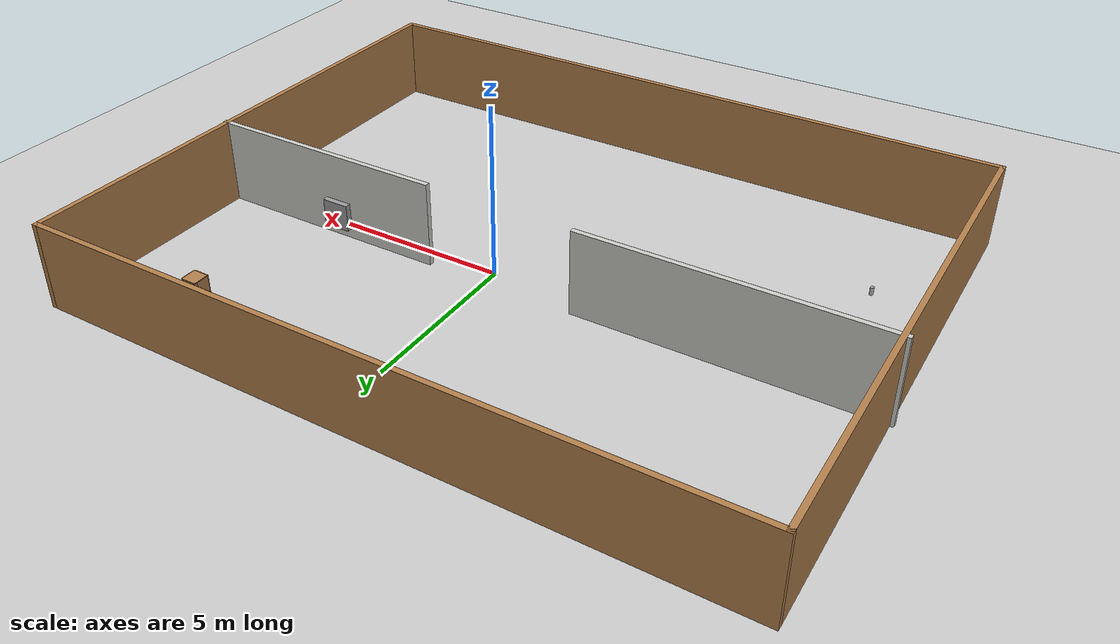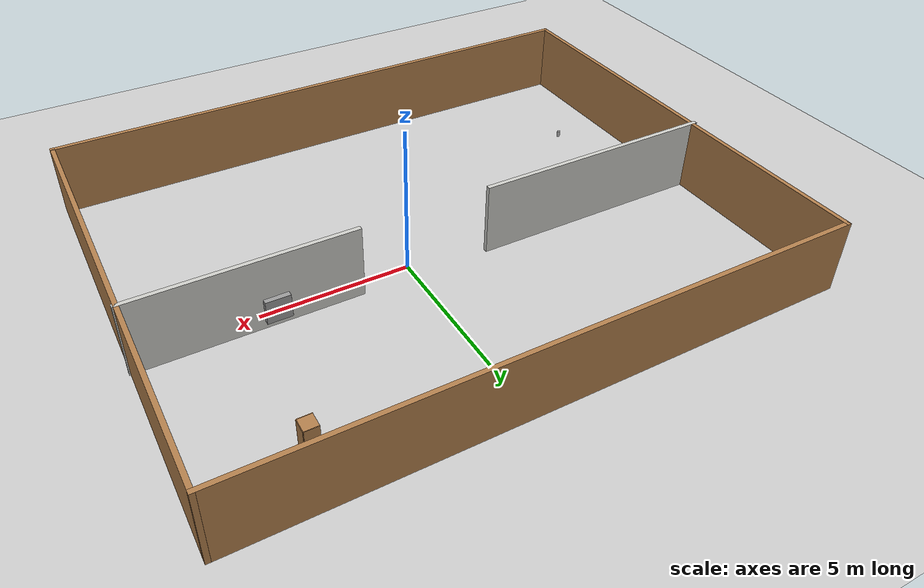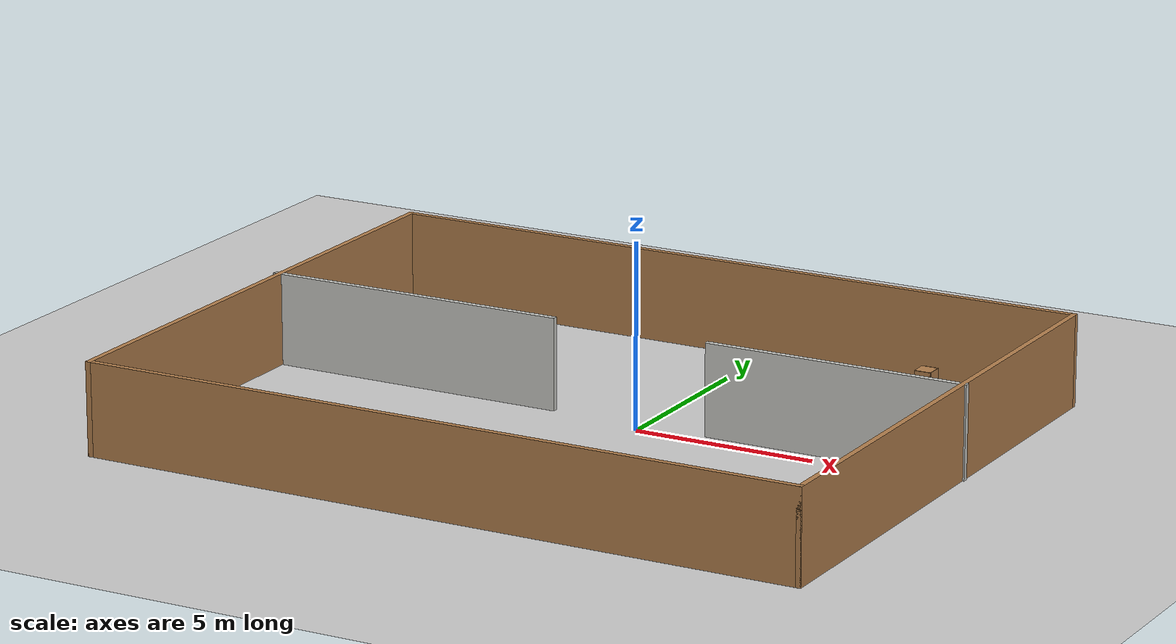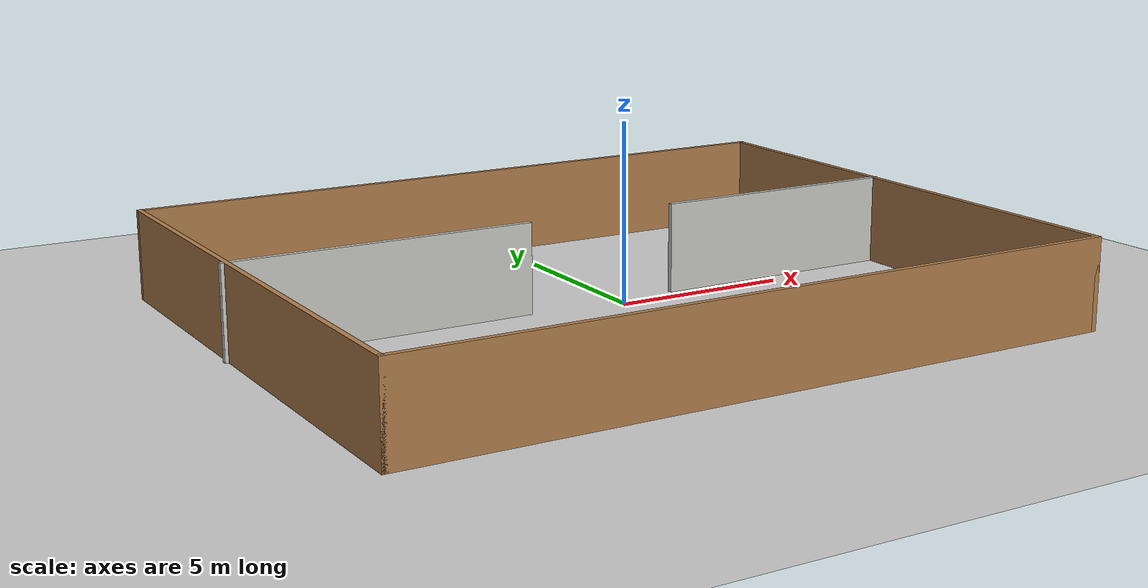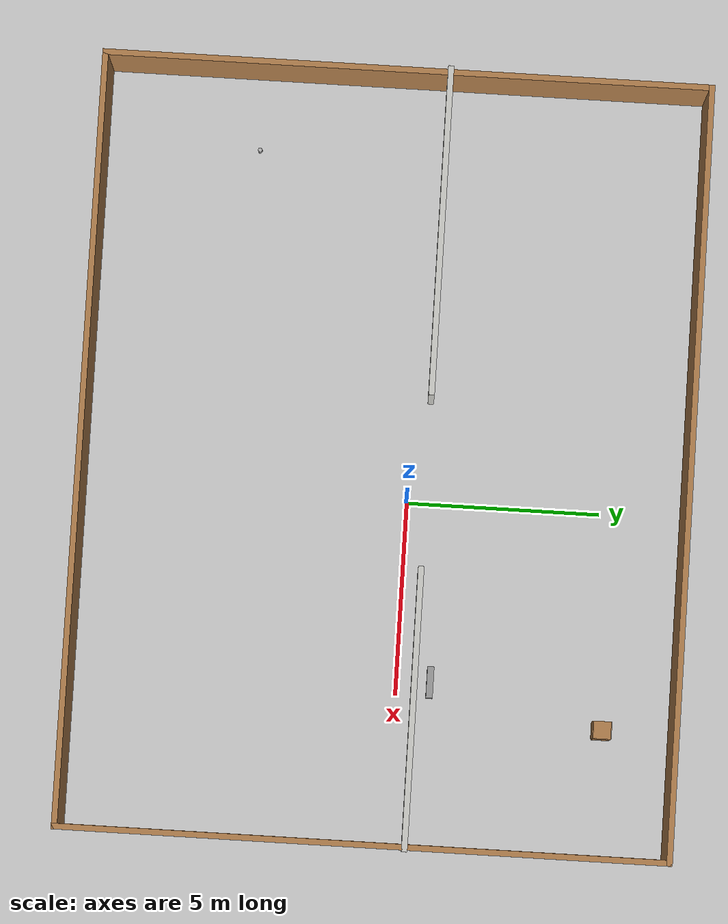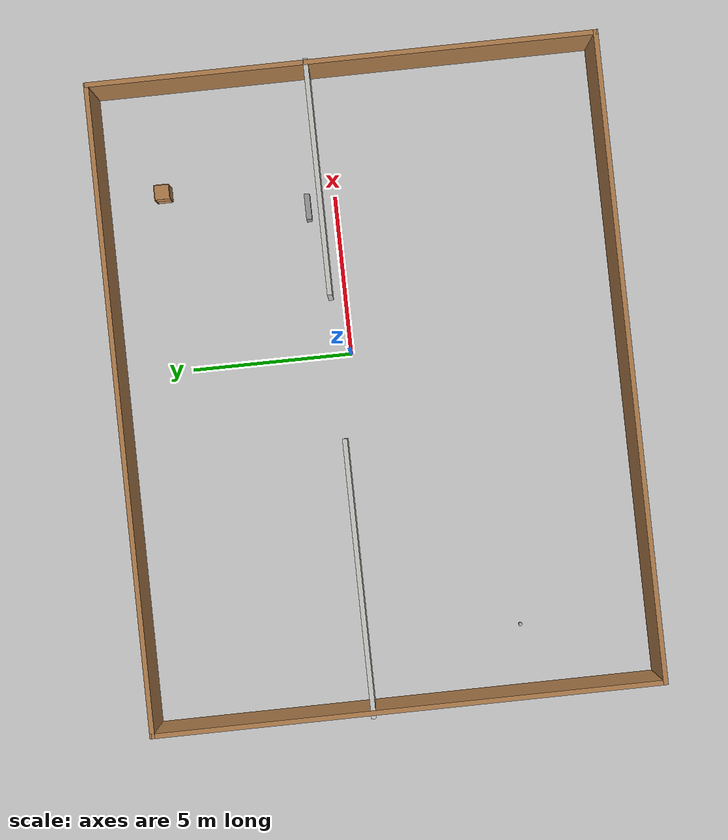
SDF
<sdf version="1.7">
 <world name="default">
  <light name="sun" type="directional">
   <pose>0 0 10 0 -0 0</pose>
   <diffuse>0.8 0.8 0.8 1</diffuse>
   <specular>0.2 0.2 0.2 1</specular>
   <attenuation>
    <range>1000</range>
    <constant>0.9</constant>
    <linear>0.01</linear>
    <quadratic>0.001</quadratic>
   </attenuation>
   <direction>-0.5 0.1 -0.9</direction>
   <spot><inner_angle>0</inner_angle><outer_angle>0</outer_angle><falloff>0</falloff></spot>
  </light>
  <model name="ground_plane">
   <static>1</static>
   <link name="link">
    <collision name="collision">
     <geometry><plane><normal>0 0 1</normal><size>100 100</size></plane></geometry>
     <surface>
      <contact><collide_bitmask>65535</collide_bitmask></contact>
      <friction><ode><mu>100</mu><mu2>50</mu2></ode></friction>
     </surface>
    </collision>
    <visual name="visual">
     <cast_shadows>0</cast_shadows>
     <geometry><plane><normal>0 0 1</normal><size>100 100</size></plane></geometry>
     <material>
      <script><uri>file://media/materials/scripts/gazebo.material</uri><name>Gazebo/Grey</name></script>
     </material>
    </visual>
   </link>
  </model>
  <gravity>0 0 -9.8</gravity>
  <magnetic_field>6e-06 2.3e-05 -4.2e-05</magnetic_field>
  <atmosphere type="adiabatic"/>
  <physics type="ode">
   <max_step_size>0.001</max_step_size>
   <real_time_factor>1</real_time_factor>
   <real_time_update_rate>1000</real_time_update_rate>
  </physics>
  <scene><ambient>0.4 0.4 0.4 1</ambient><background>0.7 0.7 0.7 1</background><shadows>1</shadows></scene>
  <audio><device>default</device></audio>
  <spherical_coordinates>
   <surface_model>EARTH_WGS84</surface_model>
   <latitude_deg>0</latitude_deg>
   <longitude_deg>0</longitude_deg>
   <elevation>0</elevation>
   <heading_deg>0</heading_deg>
  </spherical_coordinates>
  <model name="custom_world">
   <pose>-1.05506 -0.623896 0 0 -0 0</pose>
   <link name="Wall_10">
    <collision name="Wall_10_Collision">
     <geometry><box><size>15.75 0.15 2.5</size></box></geometry>
     <pose>0 0 1.25 0 -0 0</pose>
    </collision>
    <visual name="Wall_10_Visual">
     <pose>0 0 1.25 0 -0 0</pose>
     <geometry><box><size>15.75 0.15 2.5</size></box></geometry>
     <material>
      <script><uri>file://media/materials/scripts/gazebo.material</uri><name>Gazebo/Wood</name></script>
      <ambient>1 1 1 1</ambient>
     </material>
     <meta><layer>0</layer></meta>
    </visual>
    <pose>-9.89793 -0 0 0 -0 -1.5708</pose>
   </link>
   <link name="Wall_11">
    <collision name="Wall_11_Collision">
     <geometry><box><size>20 0.15 2.5</size></box></geometry>
     <pose>0 0 1.25 0 -0 0</pose>
    </collision>
    <visual name="Wall_11_Visual">
     <pose>0 0 1.25 0 -0 0</pose>
     <geometry><box><size>20 0.15 2.5</size></box></geometry>
     <material>
      <script><uri>file://media/materials/scripts/gazebo.material</uri><name>Gazebo/Wood</name></script>
      <ambient>1 1 1 1</ambient>
     </material>
     <meta><layer>0</layer></meta>
    </visual>
    <pose>0.027072 -7.8 0 0 -0 0</pose>
   </link>
   <link name="Wall_12">
    <collision name="Wall_12_Collision">
     <geometry><box><size>15.75 0.15 2.5</size></box></geometry>
     <pose>0 0 1.25 0 -0 0</pose>
    </collision>
    <visual name="Wall_12_Visual">
     <pose>0 0 1.25 0 -0 0</pose>
     <geometry><box><size>15.75 0.15 2.5</size></box></geometry>
     <material>
      <script><uri>file://media/materials/scripts/gazebo.material</uri><name>Gazebo/Wood</name></script>
      <ambient>1 1 1 1</ambient>
     </material>
     <meta><layer>0</layer></meta>
    </visual>
    <pose>9.95207 -0 0 0 -0 1.5708</pose>
   </link>
   <link name="Wall_15">
    <collision name="Wall_15_Collision">
     <geometry><box><size>7.25 0.15 2.5</size></box></geometry>
     <pose>0 0 1.25 0 -0 0</pose>
    </collision>
    <visual name="Wall_15_Visual">
     <pose>0 0 1.25 0 -0 0</pose>
     <geometry><box><size>7.25 0.15 2.5</size></box></geometry>
     <material>
      <script><uri>file://media/materials/scripts/gazebo.material</uri><name>Gazebo/CeilingTiled</name></script>
      <ambient>0.760784 0.662745 0.627451 1</ambient>
     </material>
     <meta><layer>0</layer></meta>
    </visual>
    <pose>6.44253 1.08437 0 0 -0 3.14159</pose>
   </link>
   <link name="Wall_19">
    <collision name="Wall_19_Collision">
     <geometry><box><size>8.5 0.15 2.5</size></box></geometry>
     <pose>0 0 1.25 0 -0 0</pose>
    </collision>
    <visual name="Wall_19_Visual">
     <pose>0 0 1.25 0 -0 0</pose>
     <geometry><box><size>8.5 0.15 2.5</size></box></geometry>
     <material>
      <script><uri>file://media/materials/scripts/gazebo.material</uri><name>Gazebo/CeilingTiled</name></script>
      <ambient>0.760784 0.662745 0.627451 1</ambient>
     </material>
     <meta><layer>0</layer></meta>
    </visual>
    <pose>-5.81753 1.08437 0 0 -0 0</pose>
   </link>
   <link name="Wall_9">
    <collision name="Wall_9_Collision">
     <geometry><box><size>20 0.15 2.5</size></box></geometry>
     <pose>0 0 1.25 0 -0 0</pose>
    </collision>
    <visual name="Wall_9_Visual">
     <pose>0 0 1.25 0 -0 0</pose>
     <geometry><box><size>20 0.15 2.5</size></box></geometry>
     <material>
      <script><uri>file://media/materials/scripts/gazebo.material</uri><name>Gazebo/Wood</name></script>
      <ambient>1 1 1 1</ambient>
     </material>
     <meta><layer>0</layer></meta>
    </visual>
    <pose>0.027072 7.8 0 0 -0 3.14159</pose>
   </link>
   <link name="Window_0">
    <collision name="Window_0_Collision">
     <geometry><box><size>0.8 0.17 0.8</size></box></geometry>
     <pose>0 0 0.4 0 -0 0</pose>
    </collision>
    <visual name="Window_0_Visual">
     <pose>0 0 0.4 0 -0 0</pose>
     <geometry><box><size>0.8 0.17 0.8</size></box></geometry>
     <material>
      <script><uri>file://media/materials/scripts/gazebo.material</uri><name>Gazebo/Grey</name></script>
     </material>
    </visual>
    <pose>5.70424 1.48893 0.5 0 -0 0</pose>
   </link>
   <static>1</static>
  </model>
  <model name="cabinet">
   <static>1</static>
   <link name="cabinet_bottom_plate">
    <inertial>
     <pose>0 0 -1 0 -0 0</pose>
     <inertia><ixx>2.05</ixx><ixy>0</ixy><ixz>0</ixz><iyy>2.05</iyy><iyz>0</iyz><izz>2.05</izz></inertia>
     <mass>25</mass>
    </inertial>
    <collision name="cabinet_bottom_plate_geom">
     <pose>0 0 0.01 0 -0 0</pose>
     <geometry><box><size>0.45 0.45 0.02</size></box></geometry>
    </collision>
    <visual name="cabinet_bottom_plate_geom_visual">
     <pose>0 0 0.01 0 -0 0</pose>
     <geometry><box><size>0.45 0.45 0.02</size></box></geometry>
     <material>
      <script><uri>file://media/materials/scripts/gazebo.material</uri><name>Gazebo/Wood</name></script>
     </material>
    </visual>
    <collision name="cabinet_bottom_plate_geom_cabinet_back_plate">
     <pose>0.235 0 0.51 0 -0 0</pose>
     <geometry><box><size>0.02 0.45 1.02</size></box></geometry>
    </collision>
    <visual name="cabinet_bottom_plate_geom_cabinet_back_plate_visual">
     <pose>0.235 0 0.51 0 -0 0</pose>
     <geometry><box><size>0.02 0.45 1.02</size></box></geometry>
     <material>
      <script><uri>file://media/materials/scripts/gazebo.material</uri><name>Gazebo/Wood</name></script>
     </material>
    </visual>
    <collision name="cabinet_bottom_plate_geom_cabinet_left_plate">
     <pose>0 0.235 0.51 0 -0 0</pose>
     <geometry><box><size>0.45 0.02 1.02</size></box></geometry>
    </collision>
    <visual name="cabinet_bottom_plate_geom_cabinet_left_plate_visual">
     <pose>0 0.235 0.51 0 -0 0</pose>
     <geometry><box><size>0.45 0.02 1.02</size></box></geometry>
     <material>
      <script><uri>file://media/materials/scripts/gazebo.material</uri><name>Gazebo/Wood</name></script>
     </material>
    </visual>
    <collision name="cabinet_bottom_plate_geom_cabinet_middle_plate">
     <pose>0 0 0.51 0 -0 0</pose>
     <geometry><box><size>0.45 0.45 0.02</size></box></geometry>
    </collision>
    <visual name="cabinet_bottom_plate_geom_cabinet_middle_plate_visual">
     <pose>0 0 0.51 0 -0 0</pose>
     <geometry><box><size>0.45 0.45 0.02</size></box></geometry>
     <material>
      <script><uri>file://media/materials/scripts/gazebo.material</uri><name>Gazebo/Wood</name></script>
     </material>
    </visual>
    <collision name="cabinet_bottom_plate_geom_cabinet_right_plate">
     <pose>0 -0.235 0.51 0 -0 0</pose>
     <geometry><box><size>0.45 0.02 1.02</size></box></geometry>
    </collision>
    <visual name="cabinet_bottom_plate_geom_cabinet_right_plate_visual">
     <pose>0 -0.235 0.51 0 -0 0</pose>
     <geometry><box><size>0.45 0.02 1.02</size></box></geometry>
     <material>
      <script><uri>file://media/materials/scripts/gazebo.material</uri><name>Gazebo/Wood</name></script>
     </material>
    </visual>
    <collision name="cabinet_bottom_plate_geom_cabinet_top_plate">
     <pose>0 0 1.01 0 -0 0</pose>
     <geometry><box><size>0.45 0.45 0.02</size></box></geometry>
    </collision>
    <visual name="cabinet_bottom_plate_geom_cabinet_top_plate_visual">
     <pose>0 0 1.01 0 -0 0</pose>
     <geometry><box><size>0.45 0.45 0.02</size></box></geometry>
     <material>
      <script><uri>file://media/materials/scripts/gazebo.material</uri><name>Gazebo/Wood</name></script>
     </material>
    </visual>
   </link>
   <pose>5.59986 5.35481 0 0 -0 0</pose>
  </model>
  <model name="beer">
   <link name="link">
    <pose>0 0 0.115 0 -0 0</pose>
    <inertial>
     <mass>0.39</mass>
     <inertia><ixx>0.00058</ixx><ixy>0</ixy><ixz>0</ixz><iyy>0.00058</iyy><iyz>0</iyz><izz>0.00019</izz></inertia>
    </inertial>
    <collision name="collision">
     <geometry><cylinder><radius>0.055</radius><length>0.23</length></cylinder></geometry>
    </collision>
    <visual name="visual">
     <geometry><cylinder><radius>0.055</radius><length>0.23</length></cylinder></geometry>
     <material>
      <script>
       <uri>model://beer/materials/scripts</uri>
       <uri>model://beer/materials/textures</uri>
       <name>Beer/Diffuse</name>
      </script>
     </material>
    </visual>
   </link>
   <pose>-8.99775 -4.38644 -7e-06 -0 -0 -1.3e-05</pose>
  </model>
 </world>
</sdf>
